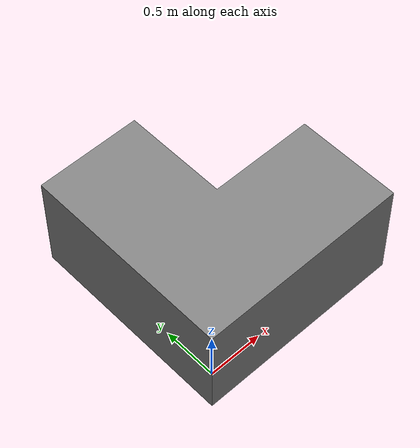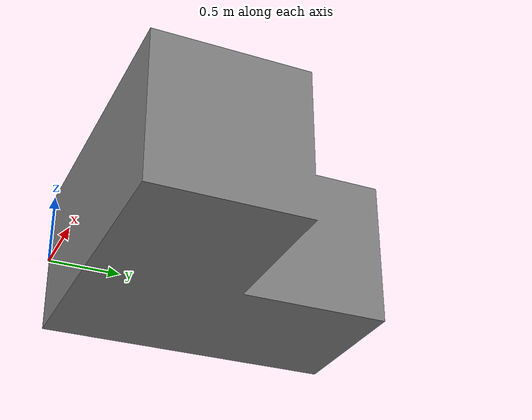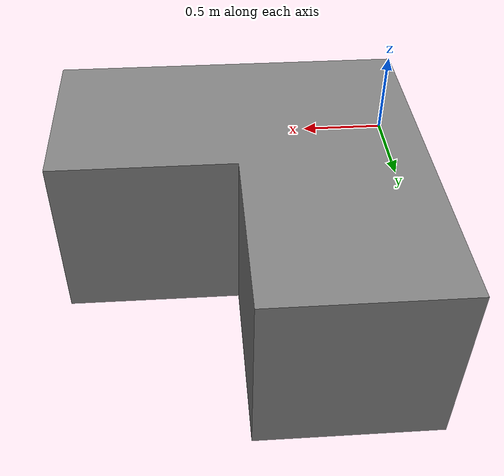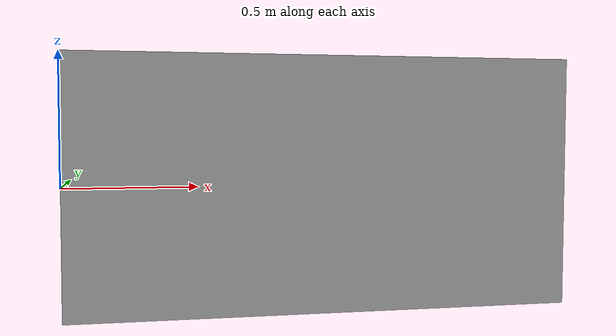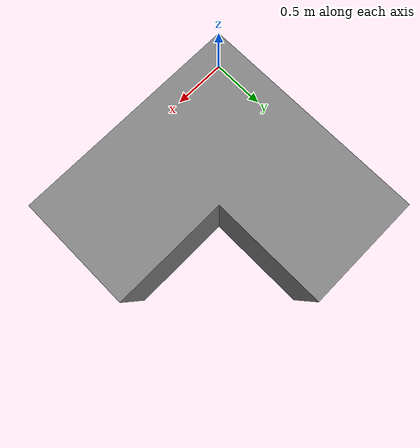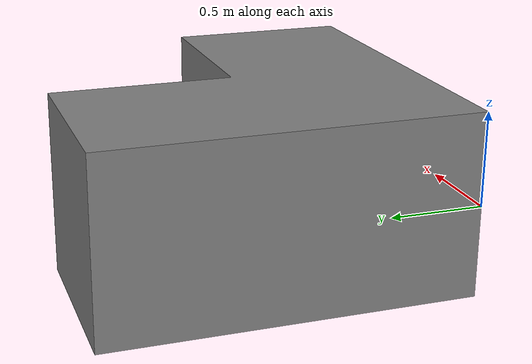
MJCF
<mujoco model="mesh-inertia-mode-change">
  <asset>
    <mesh name="concave_shape" file="concave_shape.obj" inertia="convex"/>
  </asset>
  <worldbody>
    <body name="inertia_body">
      <geom name="inertia_geom" type="mesh" mesh="concave_shape" density="1000"/>
    </body>
  </worldbody>
</mujoco>
